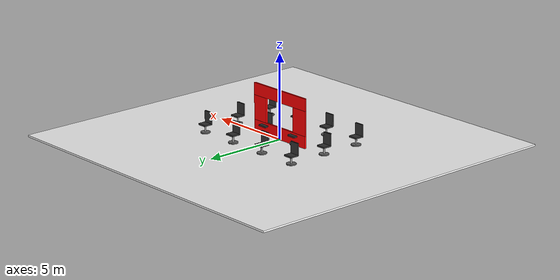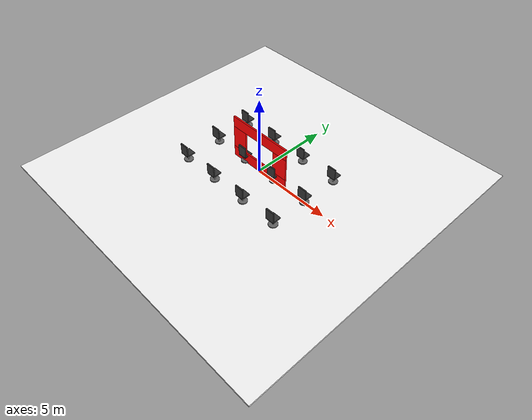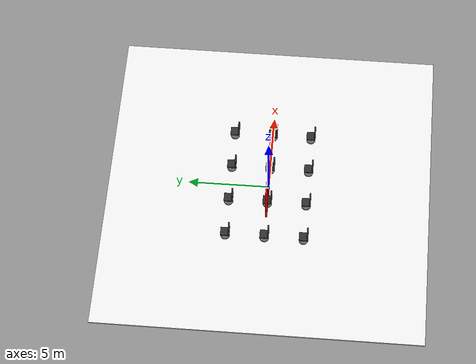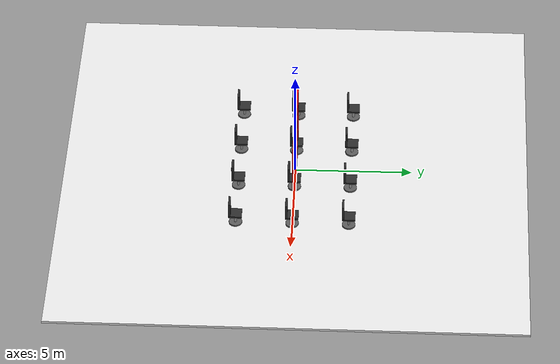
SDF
<?xml version='1.0' encoding='utf-8'?>
<sdf version="1.10">
  <world name="default">
    <gravity>0 0 -9.8</gravity>
    <scene>
      <grid>false</grid>
      <shadows>true</shadows>
      <ambient>0.6 0.6 0.6 1</ambient>
      <background>0.4 0.6 0.9 1</background>
      <sky />
    </scene>
    <light type="directional" name="sun">
      <cast_shadows>true</cast_shadows>
      <pose>0 0 10 0 0 0</pose>
      <diffuse>0.9 0.9 0.9 1</diffuse>
      <specular>0.3 0.3 0.3 1</specular>
      <direction>-0.4 0.2 -1</direction>
    </light>
    <model name="ground_plane">
      <static>true</static>
      <link name="link">
        <collision name="collision">
          <pose>0 0 -0.05 0 0 0</pose>
          <geometry>
            <box>
              <size>20 20 0.1</size>
            </box>
          </geometry>
        </collision>
        <visual name="visual">
          <pose>0 0 -0.05 0 0 0</pose>
          <geometry>
            <box>
              <size>20 20 0.1</size>
            </box>
          </geometry>
          <material>
            <ambient>1.0 1.0 1.0 1</ambient>
            <diffuse>1.0 1.0 1.0 1</diffuse>
            <pbr>
              <metal>
                <albedo_map>file:///workspace/Projects/gazebo_demo/worlds/course.png</albedo_map>
              </metal>
            </pbr>
          </material>
        </visual>
      </link>
    </model>
    <include>
      <uri>model://ackermann_car</uri>
      <pose>0 0 0 0 0 0</pose>
    </include>
    <plugin filename="gz-sim-physics-system" name="gz::sim::systems::Physics" />
    <plugin filename="gz-sim-scene-broadcaster-system" name="gz::sim::systems::SceneBroadcaster" />
    <plugin filename="gz-sim-sensors-system" name="gz::sim::systems::Sensors" />
    <plugin filename="gz-sim-user-commands-system" name="gz::sim::systems::UserCommands" />
    <model name="office_chair_grid">
      <static>true</static>
      <pose>0 0 0 0 0 0</pose>
      <link name="office_chair_link">
        <visual name="chair_1_seat_visual">
          <pose>-3.6 2.4 0.55 0 0 0</pose>
          <geometry>
            <box>
              <size>0.55 0.55 0.08</size>
            </box>
          </geometry>
          <material>
            <ambient>0.10 0.10 0.10 1</ambient>
            <diffuse>0.20 0.20 0.20 1</diffuse>
          </material>
        </visual>
        <collision name="chair_1_seat_collision">
          <pose>-3.6 2.4 0.55 0 0 0</pose>
          <geometry>
            <box>
              <size>0.55 0.55 0.08</size>
            </box>
          </geometry>
        </collision>
        <visual name="chair_1_back_visual">
          <pose>-3.6 2.16 0.90 0 0 0</pose>
          <geometry>
            <box>
              <size>0.55 0.08 0.70</size>
            </box>
          </geometry>
          <material>
            <ambient>0.10 0.10 0.10 1</ambient>
            <diffuse>0.20 0.20 0.20 1</diffuse>
          </material>
        </visual>
        <collision name="chair_1_back_collision">
          <pose>-3.6 2.16 0.90 0 0 0</pose>
          <geometry>
            <box>
              <size>0.55 0.08 0.70</size>
            </box>
          </geometry>
        </collision>
        <visual name="chair_1_pole_visual">
          <pose>-3.6 2.4 0.275 0 0 0</pose>
          <geometry>
            <cylinder>
              <radius>0.05</radius>
              <length>0.55</length>
            </cylinder>
          </geometry>
          <material>
            <ambient>0.45 0.45 0.45 1</ambient>
            <diffuse>0.60 0.60 0.60 1</diffuse>
          </material>
        </visual>
        <collision name="chair_1_pole_collision">
          <pose>-3.6 2.4 0.275 0 0 0</pose>
          <geometry>
            <cylinder>
              <radius>0.05</radius>
              <length>0.55</length>
            </cylinder>
          </geometry>
        </collision>
        <visual name="chair_1_base_visual">
          <pose>-3.6 2.4 0.08 0 0 0</pose>
          <geometry>
            <cylinder>
              <radius>0.28</radius>
              <length>0.06</length>
            </cylinder>
          </geometry>
          <material>
            <ambient>0.30 0.30 0.30 1</ambient>
            <diffuse>0.40 0.40 0.40 1</diffuse>
          </material>
        </visual>
        <collision name="chair_1_base_collision">
          <pose>-3.6 2.4 0.08 0 0 0</pose>
          <geometry>
            <cylinder>
              <radius>0.28</radius>
              <length>0.06</length>
            </cylinder>
          </geometry>
        </collision>
        <visual name="chair_2_seat_visual">
          <pose>-1.2 2.4 0.55 0 0 0</pose>
          <geometry>
            <box>
              <size>0.55 0.55 0.08</size>
            </box>
          </geometry>
          <material>
            <ambient>0.10 0.10 0.10 1</ambient>
            <diffuse>0.20 0.20 0.20 1</diffuse>
          </material>
        </visual>
        <collision name="chair_2_seat_collision">
          <pose>-1.2 2.4 0.55 0 0 0</pose>
          <geometry>
            <box>
              <size>0.55 0.55 0.08</size>
            </box>
          </geometry>
        </collision>
        <visual name="chair_2_back_visual">
          <pose>-1.2 2.16 0.90 0 0 0</pose>
          <geometry>
            <box>
              <size>0.55 0.08 0.70</size>
            </box>
          </geometry>
          <material>
            <ambient>0.10 0.10 0.10 1</ambient>
            <diffuse>0.20 0.20 0.20 1</diffuse>
          </material>
        </visual>
        <collision name="chair_2_back_collision">
          <pose>-1.2 2.16 0.90 0 0 0</pose>
          <geometry>
            <box>
              <size>0.55 0.08 0.70</size>
            </box>
          </geometry>
        </collision>
        <visual name="chair_2_pole_visual">
          <pose>-1.2 2.4 0.275 0 0 0</pose>
          <geometry>
            <cylinder>
              <radius>0.05</radius>
              <length>0.55</length>
            </cylinder>
          </geometry>
          <material>
            <ambient>0.45 0.45 0.45 1</ambient>
            <diffuse>0.60 0.60 0.60 1</diffuse>
          </material>
        </visual>
        <collision name="chair_2_pole_collision">
          <pose>-1.2 2.4 0.275 0 0 0</pose>
          <geometry>
            <cylinder>
              <radius>0.05</radius>
              <length>0.55</length>
            </cylinder>
          </geometry>
        </collision>
        <visual name="chair_2_base_visual">
          <pose>-1.2 2.4 0.08 0 0 0</pose>
          <geometry>
            <cylinder>
              <radius>0.28</radius>
              <length>0.06</length>
            </cylinder>
          </geometry>
          <material>
            <ambient>0.30 0.30 0.30 1</ambient>
            <diffuse>0.40 0.40 0.40 1</diffuse>
          </material>
        </visual>
        <collision name="chair_2_base_collision">
          <pose>-1.2 2.4 0.08 0 0 0</pose>
          <geometry>
            <cylinder>
              <radius>0.28</radius>
              <length>0.06</length>
            </cylinder>
          </geometry>
        </collision>
        <visual name="chair_3_seat_visual">
          <pose>1.2 2.4 0.55 0 0 0</pose>
          <geometry>
            <box>
              <size>0.55 0.55 0.08</size>
            </box>
          </geometry>
          <material>
            <ambient>0.10 0.10 0.10 1</ambient>
            <diffuse>0.20 0.20 0.20 1</diffuse>
          </material>
        </visual>
        <collision name="chair_3_seat_collision">
          <pose>1.2 2.4 0.55 0 0 0</pose>
          <geometry>
            <box>
              <size>0.55 0.55 0.08</size>
            </box>
          </geometry>
        </collision>
        <visual name="chair_3_back_visual">
          <pose>1.2 2.16 0.90 0 0 0</pose>
          <geometry>
            <box>
              <size>0.55 0.08 0.70</size>
            </box>
          </geometry>
          <material>
            <ambient>0.10 0.10 0.10 1</ambient>
            <diffuse>0.20 0.20 0.20 1</diffuse>
          </material>
        </visual>
        <collision name="chair_3_back_collision">
          <pose>1.2 2.16 0.90 0 0 0</pose>
          <geometry>
            <box>
              <size>0.55 0.08 0.70</size>
            </box>
          </geometry>
        </collision>
        <visual name="chair_3_pole_visual">
          <pose>1.2 2.4 0.275 0 0 0</pose>
          <geometry>
            <cylinder>
              <radius>0.05</radius>
              <length>0.55</length>
            </cylinder>
          </geometry>
          <material>
            <ambient>0.45 0.45 0.45 1</ambient>
            <diffuse>0.60 0.60 0.60 1</diffuse>
          </material>
        </visual>
        <collision name="chair_3_pole_collision">
          <pose>1.2 2.4 0.275 0 0 0</pose>
          <geometry>
            <cylinder>
              <radius>0.05</radius>
              <length>0.55</length>
            </cylinder>
          </geometry>
        </collision>
        <visual name="chair_3_base_visual">
          <pose>1.2 2.4 0.08 0 0 0</pose>
          <geometry>
            <cylinder>
              <radius>0.28</radius>
              <length>0.06</length>
            </cylinder>
          </geometry>
          <material>
            <ambient>0.30 0.30 0.30 1</ambient>
            <diffuse>0.40 0.40 0.40 1</diffuse>
          </material>
        </visual>
        <collision name="chair_3_base_collision">
          <pose>1.2 2.4 0.08 0 0 0</pose>
          <geometry>
            <cylinder>
              <radius>0.28</radius>
              <length>0.06</length>
            </cylinder>
          </geometry>
        </collision>
        <visual name="chair_4_seat_visual">
          <pose>3.6 2.4 0.55 0 0 0</pose>
          <geometry>
            <box>
              <size>0.55 0.55 0.08</size>
            </box>
          </geometry>
          <material>
            <ambient>0.10 0.10 0.10 1</ambient>
            <diffuse>0.20 0.20 0.20 1</diffuse>
          </material>
        </visual>
        <collision name="chair_4_seat_collision">
          <pose>3.6 2.4 0.55 0 0 0</pose>
          <geometry>
            <box>
              <size>0.55 0.55 0.08</size>
            </box>
          </geometry>
        </collision>
        <visual name="chair_4_back_visual">
          <pose>3.6 2.16 0.90 0 0 0</pose>
          <geometry>
            <box>
              <size>0.55 0.08 0.70</size>
            </box>
          </geometry>
          <material>
            <ambient>0.10 0.10 0.10 1</ambient>
            <diffuse>0.20 0.20 0.20 1</diffuse>
          </material>
        </visual>
        <collision name="chair_4_back_collision">
          <pose>3.6 2.16 0.90 0 0 0</pose>
          <geometry>
            <box>
              <size>0.55 0.08 0.70</size>
            </box>
          </geometry>
        </collision>
        <visual name="chair_4_pole_visual">
          <pose>3.6 2.4 0.275 0 0 0</pose>
          <geometry>
            <cylinder>
              <radius>0.05</radius>
              <length>0.55</length>
            </cylinder>
          </geometry>
          <material>
            <ambient>0.45 0.45 0.45 1</ambient>
            <diffuse>0.60 0.60 0.60 1</diffuse>
          </material>
        </visual>
        <collision name="chair_4_pole_collision">
          <pose>3.6 2.4 0.275 0 0 0</pose>
          <geometry>
            <cylinder>
              <radius>0.05</radius>
              <length>0.55</length>
            </cylinder>
          </geometry>
        </collision>
        <visual name="chair_4_base_visual">
          <pose>3.6 2.4 0.08 0 0 0</pose>
          <geometry>
            <cylinder>
              <radius>0.28</radius>
              <length>0.06</length>
            </cylinder>
          </geometry>
          <material>
            <ambient>0.30 0.30 0.30 1</ambient>
            <diffuse>0.40 0.40 0.40 1</diffuse>
          </material>
        </visual>
        <collision name="chair_4_base_collision">
          <pose>3.6 2.4 0.08 0 0 0</pose>
          <geometry>
            <cylinder>
              <radius>0.28</radius>
              <length>0.06</length>
            </cylinder>
          </geometry>
        </collision>
        <visual name="chair_5_seat_visual">
          <pose>-3.6 0.0 0.55 0 0 0</pose>
          <geometry>
            <box>
              <size>0.55 0.55 0.08</size>
            </box>
          </geometry>
          <material>
            <ambient>0.10 0.10 0.10 1</ambient>
            <diffuse>0.20 0.20 0.20 1</diffuse>
          </material>
        </visual>
        <collision name="chair_5_seat_collision">
          <pose>-3.6 0.0 0.55 0 0 0</pose>
          <geometry>
            <box>
              <size>0.55 0.55 0.08</size>
            </box>
          </geometry>
        </collision>
        <visual name="chair_5_back_visual">
          <pose>-3.6 -0.24 0.90 0 0 0</pose>
          <geometry>
            <box>
              <size>0.55 0.08 0.70</size>
            </box>
          </geometry>
          <material>
            <ambient>0.10 0.10 0.10 1</ambient>
            <diffuse>0.20 0.20 0.20 1</diffuse>
          </material>
        </visual>
        <collision name="chair_5_back_collision">
          <pose>-3.6 -0.24 0.90 0 0 0</pose>
          <geometry>
            <box>
              <size>0.55 0.08 0.70</size>
            </box>
          </geometry>
        </collision>
        <visual name="chair_5_pole_visual">
          <pose>-3.6 0.0 0.275 0 0 0</pose>
          <geometry>
            <cylinder>
              <radius>0.05</radius>
              <length>0.55</length>
            </cylinder>
          </geometry>
          <material>
            <ambient>0.45 0.45 0.45 1</ambient>
            <diffuse>0.60 0.60 0.60 1</diffuse>
          </material>
        </visual>
        <collision name="chair_5_pole_collision">
          <pose>-3.6 0.0 0.275 0 0 0</pose>
          <geometry>
            <cylinder>
              <radius>0.05</radius>
              <length>0.55</length>
            </cylinder>
          </geometry>
        </collision>
        <visual name="chair_5_base_visual">
          <pose>-3.6 0.0 0.08 0 0 0</pose>
          <geometry>
            <cylinder>
              <radius>0.28</radius>
              <length>0.06</length>
            </cylinder>
          </geometry>
          <material>
            <ambient>0.30 0.30 0.30 1</ambient>
            <diffuse>0.40 0.40 0.40 1</diffuse>
          </material>
        </visual>
        <collision name="chair_5_base_collision">
          <pose>-3.6 0.0 0.08 0 0 0</pose>
          <geometry>
            <cylinder>
              <radius>0.28</radius>
              <length>0.06</length>
            </cylinder>
          </geometry>
        </collision>
        <visual name="chair_6_seat_visual">
          <pose>-1.2 0.0 0.55 0 0 0</pose>
          <geometry>
            <box>
              <size>0.55 0.55 0.08</size>
            </box>
          </geometry>
          <material>
            <ambient>0.10 0.10 0.10 1</ambient>
            <diffuse>0.20 0.20 0.20 1</diffuse>
          </material>
        </visual>
        <collision name="chair_6_seat_collision">
          <pose>-1.2 0.0 0.55 0 0 0</pose>
          <geometry>
            <box>
              <size>0.55 0.55 0.08</size>
            </box>
          </geometry>
        </collision>
        <visual name="chair_6_back_visual">
          <pose>-1.2 -0.24 0.90 0 0 0</pose>
          <geometry>
            <box>
              <size>0.55 0.08 0.70</size>
            </box>
          </geometry>
          <material>
            <ambient>0.10 0.10 0.10 1</ambient>
            <diffuse>0.20 0.20 0.20 1</diffuse>
          </material>
        </visual>
        <collision name="chair_6_back_collision">
          <pose>-1.2 -0.24 0.90 0 0 0</pose>
          <geometry>
            <box>
              <size>0.55 0.08 0.70</size>
            </box>
          </geometry>
        </collision>
        <visual name="chair_6_pole_visual">
          <pose>-1.2 0.0 0.275 0 0 0</pose>
          <geometry>
            <cylinder>
              <radius>0.05</radius>
              <length>0.55</length>
            </cylinder>
          </geometry>
          <material>
            <ambient>0.45 0.45 0.45 1</ambient>
            <diffuse>0.60 0.60 0.60 1</diffuse>
          </material>
        </visual>
        <collision name="chair_6_pole_collision">
          <pose>-1.2 0.0 0.275 0 0 0</pose>
          <geometry>
            <cylinder>
              <radius>0.05</radius>
              <length>0.55</length>
            </cylinder>
          </geometry>
        </collision>
        <visual name="chair_6_base_visual">
          <pose>-1.2 0.0 0.08 0 0 0</pose>
          <geometry>
            <cylinder>
              <radius>0.28</radius>
              <length>0.06</length>
            </cylinder>
          </geometry>
          <material>
            <ambient>0.30 0.30 0.30 1</ambient>
            <diffuse>0.40 0.40 0.40 1</diffuse>
          </material>
        </visual>
        <collision name="chair_6_base_collision">
          <pose>-1.2 0.0 0.08 0 0 0</pose>
          <geometry>
            <cylinder>
              <radius>0.28</radius>
              <length>0.06</length>
            </cylinder>
          </geometry>
        </collision>
        <visual name="chair_7_seat_visual">
          <pose>1.2 0.0 0.55 0 0 0</pose>
          <geometry>
            <box>
              <size>0.55 0.55 0.08</size>
            </box>
          </geometry>
          <material>
            <ambient>0.10 0.10 0.10 1</ambient>
            <diffuse>0.20 0.20 0.20 1</diffuse>
          </material>
        </visual>
        <collision name="chair_7_seat_collision">
          <pose>1.2 0.0 0.55 0 0 0</pose>
          <geometry>
            <box>
              <size>0.55 0.55 0.08</size>
            </box>
          </geometry>
        </collision>
        <visual name="chair_7_back_visual">
          <pose>1.2 -0.24 0.90 0 0 0</pose>
          <geometry>
            <box>
              <size>0.55 0.08 0.70</size>
            </box>
          </geometry>
          <material>
            <ambient>0.10 0.10 0.10 1</ambient>
            <diffuse>0.20 0.20 0.20 1</diffuse>
          </material>
        </visual>
        <collision name="chair_7_back_collision">
          <pose>1.2 -0.24 0.90 0 0 0</pose>
          <geometry>
            <box>
              <size>0.55 0.08 0.70</size>
            </box>
          </geometry>
        </collision>
        <visual name="chair_7_pole_visual">
          <pose>1.2 0.0 0.275 0 0 0</pose>
          <geometry>
            <cylinder>
              <radius>0.05</radius>
              <length>0.55</length>
            </cylinder>
          </geometry>
          <material>
            <ambient>0.45 0.45 0.45 1</ambient>
            <diffuse>0.60 0.60 0.60 1</diffuse>
          </material>
        </visual>
        <collision name="chair_7_pole_collision">
          <pose>1.2 0.0 0.275 0 0 0</pose>
          <geometry>
            <cylinder>
              <radius>0.05</radius>
              <length>0.55</length>
            </cylinder>
          </geometry>
        </collision>
        <visual name="chair_7_base_visual">
          <pose>1.2 0.0 0.08 0 0 0</pose>
          <geometry>
            <cylinder>
              <radius>0.28</radius>
              <length>0.06</length>
            </cylinder>
          </geometry>
          <material>
            <ambient>0.30 0.30 0.30 1</ambient>
            <diffuse>0.40 0.40 0.40 1</diffuse>
          </material>
        </visual>
        <collision name="chair_7_base_collision">
          <pose>1.2 0.0 0.08 0 0 0</pose>
          <geometry>
            <cylinder>
              <radius>0.28</radius>
              <length>0.06</length>
            </cylinder>
          </geometry>
        </collision>
        <visual name="chair_8_seat_visual">
          <pose>3.6 0.0 0.55 0 0 0</pose>
          <geometry>
            <box>
              <size>0.55 0.55 0.08</size>
            </box>
          </geometry>
          <material>
            <ambient>0.10 0.10 0.10 1</ambient>
            <diffuse>0.20 0.20 0.20 1</diffuse>
          </material>
        </visual>
        <collision name="chair_8_seat_collision">
          <pose>3.6 0.0 0.55 0 0 0</pose>
          <geometry>
            <box>
              <size>0.55 0.55 0.08</size>
            </box>
          </geometry>
        </collision>
        <visual name="chair_8_back_visual">
          <pose>3.6 -0.24 0.90 0 0 0</pose>
          <geometry>
            <box>
              <size>0.55 0.08 0.70</size>
            </box>
          </geometry>
          <material>
            <ambient>0.10 0.10 0.10 1</ambient>
            <diffuse>0.20 0.20 0.20 1</diffuse>
          </material>
        </visual>
        <collision name="chair_8_back_collision">
          <pose>3.6 -0.24 0.90 0 0 0</pose>
          <geometry>
            <box>
              <size>0.55 0.08 0.70</size>
            </box>
          </geometry>
        </collision>
        <visual name="chair_8_pole_visual">
          <pose>3.6 0.0 0.275 0 0 0</pose>
          <geometry>
            <cylinder>
              <radius>0.05</radius>
              <length>0.55</length>
            </cylinder>
          </geometry>
          <material>
            <ambient>0.45 0.45 0.45 1</ambient>
            <diffuse>0.60 0.60 0.60 1</diffuse>
          </material>
        </visual>
        <collision name="chair_8_pole_collision">
          <pose>3.6 0.0 0.275 0 0 0</pose>
          <geometry>
            <cylinder>
              <radius>0.05</radius>
              <length>0.55</length>
            </cylinder>
          </geometry>
        </collision>
        <visual name="chair_8_base_visual">
          <pose>3.6 0.0 0.08 0 0 0</pose>
          <geometry>
            <cylinder>
              <radius>0.28</radius>
              <length>0.06</length>
            </cylinder>
          </geometry>
          <material>
            <ambient>0.30 0.30 0.30 1</ambient>
            <diffuse>0.40 0.40 0.40 1</diffuse>
          </material>
        </visual>
        <collision name="chair_8_base_collision">
          <pose>3.6 0.0 0.08 0 0 0</pose>
          <geometry>
            <cylinder>
              <radius>0.28</radius>
              <length>0.06</length>
            </cylinder>
          </geometry>
        </collision>
        <visual name="chair_9_seat_visual">
          <pose>-3.6 -2.4 0.55 0 0 0</pose>
          <geometry>
            <box>
              <size>0.55 0.55 0.08</size>
            </box>
          </geometry>
          <material>
            <ambient>0.10 0.10 0.10 1</ambient>
            <diffuse>0.20 0.20 0.20 1</diffuse>
          </material>
        </visual>
        <collision name="chair_9_seat_collision">
          <pose>-3.6 -2.4 0.55 0 0 0</pose>
          <geometry>
            <box>
              <size>0.55 0.55 0.08</size>
            </box>
          </geometry>
        </collision>
        <visual name="chair_9_back_visual">
          <pose>-3.6 -2.6399999999999997 0.90 0 0 0</pose>
          <geometry>
            <box>
              <size>0.55 0.08 0.70</size>
            </box>
          </geometry>
          <material>
            <ambient>0.10 0.10 0.10 1</ambient>
            <diffuse>0.20 0.20 0.20 1</diffuse>
          </material>
        </visual>
        <collision name="chair_9_back_collision">
          <pose>-3.6 -2.6399999999999997 0.90 0 0 0</pose>
          <geometry>
            <box>
              <size>0.55 0.08 0.70</size>
            </box>
          </geometry>
        </collision>
        <visual name="chair_9_pole_visual">
          <pose>-3.6 -2.4 0.275 0 0 0</pose>
          <geometry>
            <cylinder>
              <radius>0.05</radius>
              <length>0.55</length>
            </cylinder>
          </geometry>
          <material>
            <ambient>0.45 0.45 0.45 1</ambient>
            <diffuse>0.60 0.60 0.60 1</diffuse>
          </material>
        </visual>
        <collision name="chair_9_pole_collision">
          <pose>-3.6 -2.4 0.275 0 0 0</pose>
          <geometry>
            <cylinder>
              <radius>0.05</radius>
              <length>0.55</length>
            </cylinder>
          </geometry>
        </collision>
        <visual name="chair_9_base_visual">
          <pose>-3.6 -2.4 0.08 0 0 0</pose>
          <geometry>
            <cylinder>
              <radius>0.28</radius>
              <length>0.06</length>
            </cylinder>
          </geometry>
          <material>
            <ambient>0.30 0.30 0.30 1</ambient>
            <diffuse>0.40 0.40 0.40 1</diffuse>
          </material>
        </visual>
        <collision name="chair_9_base_collision">
          <pose>-3.6 -2.4 0.08 0 0 0</pose>
          <geometry>
            <cylinder>
              <radius>0.28</radius>
              <length>0.06</length>
            </cylinder>
          </geometry>
        </collision>
        <visual name="chair_10_seat_visual">
          <pose>-1.2 -2.4 0.55 0 0 0</pose>
          <geometry>
            <box>
              <size>0.55 0.55 0.08</size>
            </box>
          </geometry>
          <material>
            <ambient>0.10 0.10 0.10 1</ambient>
            <diffuse>0.20 0.20 0.20 1</diffuse>
          </material>
        </visual>
        <collision name="chair_10_seat_collision">
          <pose>-1.2 -2.4 0.55 0 0 0</pose>
          <geometry>
            <box>
              <size>0.55 0.55 0.08</size>
            </box>
          </geometry>
        </collision>
        <visual name="chair_10_back_visual">
          <pose>-1.2 -2.6399999999999997 0.90 0 0 0</pose>
          <geometry>
            <box>
              <size>0.55 0.08 0.70</size>
            </box>
          </geometry>
          <material>
            <ambient>0.10 0.10 0.10 1</ambient>
            <diffuse>0.20 0.20 0.20 1</diffuse>
          </material>
        </visual>
        <collision name="chair_10_back_collision">
          <pose>-1.2 -2.6399999999999997 0.90 0 0 0</pose>
          <geometry>
            <box>
              <size>0.55 0.08 0.70</size>
            </box>
          </geometry>
        </collision>
        <visual name="chair_10_pole_visual">
          <pose>-1.2 -2.4 0.275 0 0 0</pose>
          <geometry>
            <cylinder>
              <radius>0.05</radius>
              <length>0.55</length>
            </cylinder>
          </geometry>
          <material>
            <ambient>0.45 0.45 0.45 1</ambient>
            <diffuse>0.60 0.60 0.60 1</diffuse>
          </material>
        </visual>
        <collision name="chair_10_pole_collision">
          <pose>-1.2 -2.4 0.275 0 0 0</pose>
          <geometry>
            <cylinder>
              <radius>0.05</radius>
              <length>0.55</length>
            </cylinder>
          </geometry>
        </collision>
        <visual name="chair_10_base_visual">
          <pose>-1.2 -2.4 0.08 0 0 0</pose>
          <geometry>
            <cylinder>
              <radius>0.28</radius>
              <length>0.06</length>
            </cylinder>
          </geometry>
          <material>
            <ambient>0.30 0.30 0.30 1</ambient>
            <diffuse>0.40 0.40 0.40 1</diffuse>
          </material>
        </visual>
        <collision name="chair_10_base_collision">
          <pose>-1.2 -2.4 0.08 0 0 0</pose>
          <geometry>
            <cylinder>
              <radius>0.28</radius>
              <length>0.06</length>
            </cylinder>
          </geometry>
        </collision>
        <visual name="chair_11_seat_visual">
          <pose>1.2 -2.4 0.55 0 0 0</pose>
          <geometry>
            <box>
              <size>0.55 0.55 0.08</size>
            </box>
          </geometry>
          <material>
            <ambient>0.10 0.10 0.10 1</ambient>
            <diffuse>0.20 0.20 0.20 1</diffuse>
          </material>
        </visual>
        <collision name="chair_11_seat_collision">
          <pose>1.2 -2.4 0.55 0 0 0</pose>
          <geometry>
            <box>
              <size>0.55 0.55 0.08</size>
            </box>
          </geometry>
        </collision>
        <visual name="chair_11_back_visual">
          <pose>1.2 -2.6399999999999997 0.90 0 0 0</pose>
          <geometry>
            <box>
              <size>0.55 0.08 0.70</size>
            </box>
          </geometry>
          <material>
            <ambient>0.10 0.10 0.10 1</ambient>
            <diffuse>0.20 0.20 0.20 1</diffuse>
          </material>
        </visual>
        <collision name="chair_11_back_collision">
          <pose>1.2 -2.6399999999999997 0.90 0 0 0</pose>
          <geometry>
            <box>
              <size>0.55 0.08 0.70</size>
            </box>
          </geometry>
        </collision>
        <visual name="chair_11_pole_visual">
          <pose>1.2 -2.4 0.275 0 0 0</pose>
          <geometry>
            <cylinder>
              <radius>0.05</radius>
              <length>0.55</length>
            </cylinder>
          </geometry>
          <material>
            <ambient>0.45 0.45 0.45 1</ambient>
            <diffuse>0.60 0.60 0.60 1</diffuse>
          </material>
        </visual>
        <collision name="chair_11_pole_collision">
          <pose>1.2 -2.4 0.275 0 0 0</pose>
          <geometry>
            <cylinder>
              <radius>0.05</radius>
              <length>0.55</length>
            </cylinder>
          </geometry>
        </collision>
        <visual name="chair_11_base_visual">
          <pose>1.2 -2.4 0.08 0 0 0</pose>
          <geometry>
            <cylinder>
              <radius>0.28</radius>
              <length>0.06</length>
            </cylinder>
          </geometry>
          <material>
            <ambient>0.30 0.30 0.30 1</ambient>
            <diffuse>0.40 0.40 0.40 1</diffuse>
          </material>
        </visual>
        <collision name="chair_11_base_collision">
          <pose>1.2 -2.4 0.08 0 0 0</pose>
          <geometry>
            <cylinder>
              <radius>0.28</radius>
              <length>0.06</length>
            </cylinder>
          </geometry>
        </collision>
        <visual name="chair_12_seat_visual">
          <pose>3.6 -2.4 0.55 0 0 0</pose>
          <geometry>
            <box>
              <size>0.55 0.55 0.08</size>
            </box>
          </geometry>
          <material>
            <ambient>0.10 0.10 0.10 1</ambient>
            <diffuse>0.20 0.20 0.20 1</diffuse>
          </material>
        </visual>
        <collision name="chair_12_seat_collision">
          <pose>3.6 -2.4 0.55 0 0 0</pose>
          <geometry>
            <box>
              <size>0.55 0.55 0.08</size>
            </box>
          </geometry>
        </collision>
        <visual name="chair_12_back_visual">
          <pose>3.6 -2.6399999999999997 0.90 0 0 0</pose>
          <geometry>
            <box>
              <size>0.55 0.08 0.70</size>
            </box>
          </geometry>
          <material>
            <ambient>0.10 0.10 0.10 1</ambient>
            <diffuse>0.20 0.20 0.20 1</diffuse>
          </material>
        </visual>
        <collision name="chair_12_back_collision">
          <pose>3.6 -2.6399999999999997 0.90 0 0 0</pose>
          <geometry>
            <box>
              <size>0.55 0.08 0.70</size>
            </box>
          </geometry>
        </collision>
        <visual name="chair_12_pole_visual">
          <pose>3.6 -2.4 0.275 0 0 0</pose>
          <geometry>
            <cylinder>
              <radius>0.05</radius>
              <length>0.55</length>
            </cylinder>
          </geometry>
          <material>
            <ambient>0.45 0.45 0.45 1</ambient>
            <diffuse>0.60 0.60 0.60 1</diffuse>
          </material>
        </visual>
        <collision name="chair_12_pole_collision">
          <pose>3.6 -2.4 0.275 0 0 0</pose>
          <geometry>
            <cylinder>
              <radius>0.05</radius>
              <length>0.55</length>
            </cylinder>
          </geometry>
        </collision>
        <visual name="chair_12_base_visual">
          <pose>3.6 -2.4 0.08 0 0 0</pose>
          <geometry>
            <cylinder>
              <radius>0.28</radius>
              <length>0.06</length>
            </cylinder>
          </geometry>
          <material>
            <ambient>0.30 0.30 0.30 1</ambient>
            <diffuse>0.40 0.40 0.40 1</diffuse>
          </material>
        </visual>
        <collision name="chair_12_base_collision">
          <pose>3.6 -2.4 0.08 0 0 0</pose>
          <geometry>
            <cylinder>
              <radius>0.28</radius>
              <length>0.06</length>
            </cylinder>
          </geometry>
        </collision>
      </link>
    </model>
  </world>
</sdf>

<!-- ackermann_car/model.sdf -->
<sdf version="1.9">
  <model name="window_wall">
    <static>true</static>

    <link name="wall_link">

      <!-- bottom -->
      <collision name="bottom_collision">
        <pose>0 0 0.3556 0 0 0</pose>
        <geometry>
          <box>
            <size>4.2098 0.10 0.7112</size>
          </box>
        </geometry>
      </collision>
      <visual name="bottom_visual">
        <pose>0 0 0.3556 0 0 0</pose>
        <geometry>
          <box>
            <size>4.2098 0.10 0.7112</size>
          </box>
        </geometry>
        <material>
          <ambient>1 0 0 1</ambient>
          <diffuse>1 0 0 1</diffuse>
        </material>
      </visual>

      <!-- top -->
      <collision name="top_collision">
        <pose>0 0 2.5146 0 0 0</pose>
        <geometry>
          <box>
            <size>4.2098 0.10 0.7112</size>
          </box>
        </geometry>
      </collision>
      <visual name="top_visual">
        <pose>0 0 2.5146 0 0 0</pose>
        <geometry>
          <box>
            <size>4.2098 0.10 0.7112</size>
          </box>
        </geometry>
        <material>
          <ambient>1 0 0 1</ambient>
          <diffuse>1 0 0 1</diffuse>
        </material>
      </visual>

      <!-- left side -->
      <collision name="left_collision">
        <pose>-1.6049 0 1.4351 0 0 0</pose>
        <geometry>
          <box>
            <size>1.0000 0.10 1.4478</size>
          </box>
        </geometry>
      </collision>
      <visual name="left_visual">
        <pose>-1.6049 0 1.4351 0 0 0</pose>
        <geometry>
          <box>
            <size>1.0000 0.10 1.4478</size>
          </box>
        </geometry>
        <material>
          <ambient>1 0 0 1</ambient>
          <diffuse>1 0 0 1</diffuse>
        </material>
      </visual>

      <!-- right side -->
      <collision name="right_collision">
        <pose>1.6049 0 1.4351 0 0 0</pose>
        <geometry>
          <box>
            <size>1.0000 0.10 1.4478</size>
          </box>
        </geometry>
      </collision>
      <visual name="right_visual">
        <pose>1.6049 0 1.4351 0 0 0</pose>
        <geometry>
          <box>
            <size>1.0000 0.10 1.4478</size>
          </box>
        </geometry>
        <material>
          <ambient>1 0 0 1</ambient>
          <diffuse>1 0 0 1</diffuse>
        </material>
      </visual>

    </link>
  </model>
</sdf>
